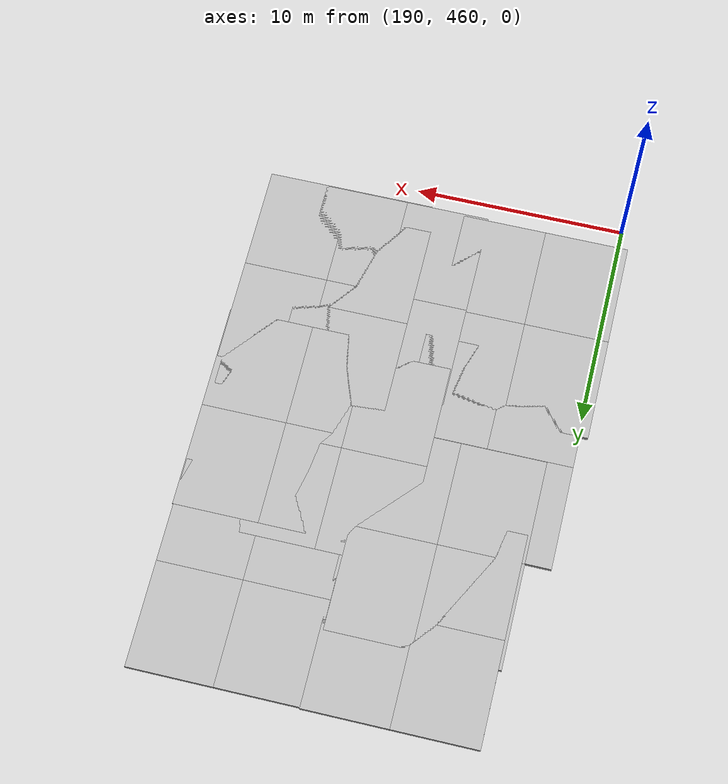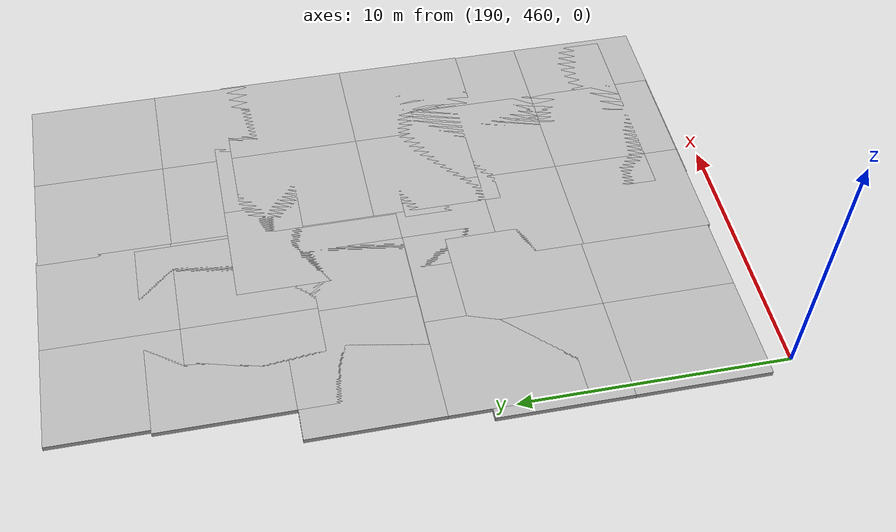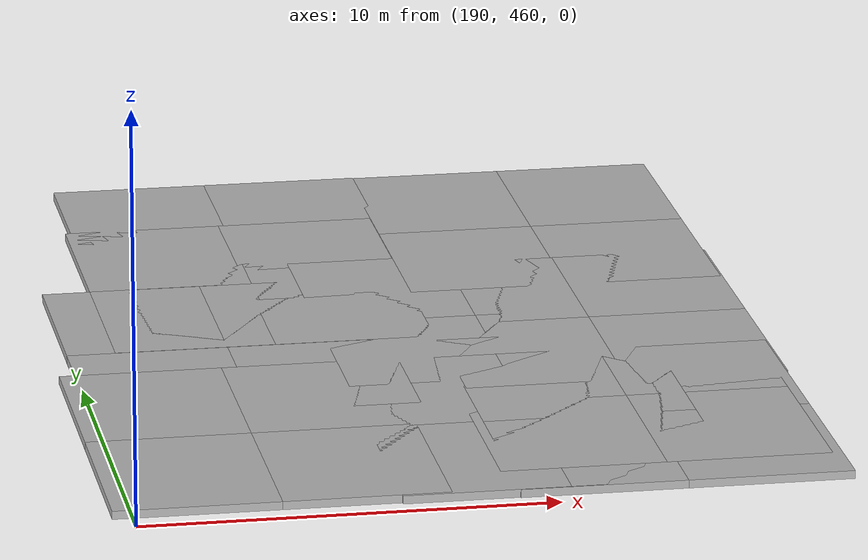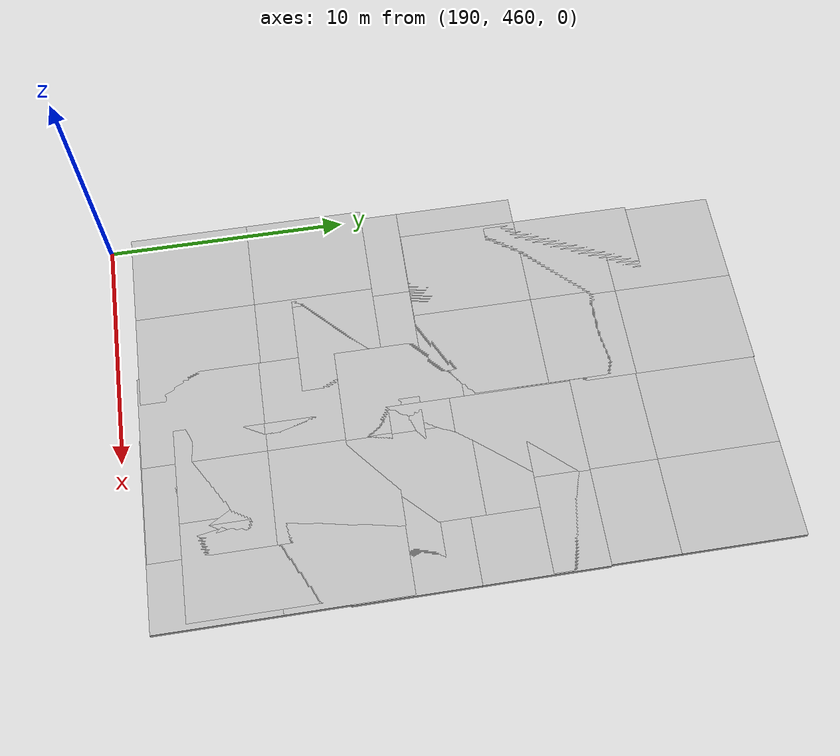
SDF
<sdf version="1.6">
 <world name="default">
  <model name="ground">
   <link name="body">
    <collision name="geom">
     <geometry><plane><normal>0 0 1</normal><size>1 1</size></plane></geometry>
     <surface><friction><ode><mu>100</mu><mu2>50</mu2></ode></friction></surface>
    </collision>
   </link>
   <static>1</static>
  </model>
  <model name="mud_box">
   <static>1</static>
   <link name="link">
    <collision name="collision"><geometry><box><size>8 10 0.2</size></box></geometry></collision>
    <visual name="visual_1">
     <pose>-2 2.5 0 0 -0 0</pose>
     <cast_shadows>0</cast_shadows>
     <geometry><box><size>4 5 0.2</size></box></geometry>
     <material>
      <script>
       <uri>model://mud_box/materials/scripts</uri>
       <uri>model://mud_box/materials/textures</uri>
       <name>vrc/mud</name>
      </script>
     </material>
    </visual>
    <visual name="visual_2">
     <pose>2 2.5 0 0 -0 0</pose>
     <cast_shadows>0</cast_shadows>
     <geometry><box><size>4 5 0.2</size></box></geometry>
     <material>
      <script>
       <uri>model://mud_box/materials/scripts</uri>
       <uri>model://mud_box/materials/textures</uri>
       <name>vrc/mud</name>
      </script>
     </material>
    </visual>
    <visual name="visual_3">
     <pose>2 -2.5 0 0 -0 0</pose>
     <cast_shadows>0</cast_shadows>
     <geometry><box><size>4 5 0.2</size></box></geometry>
     <material>
      <script>
       <uri>model://mud_box/materials/scripts</uri>
       <uri>model://mud_box/materials/textures</uri>
       <name>vrc/mud</name>
      </script>
     </material>
    </visual>
    <visual name="visual_4">
     <pose>-2 -2.5 0 0 -0 0</pose>
     <cast_shadows>0</cast_shadows>
     <geometry><box><size>4 5 0.2</size></box></geometry>
     <material>
      <script>
       <uri>model://mud_box/materials/scripts</uri>
       <uri>model://mud_box/materials/textures</uri>
       <name>vrc/mud</name>
      </script>
     </material>
    </visual>
   </link>
   <pose>203.182 473.293 0 0 -0 0</pose>
  </model>
  <model name="mud_box_0">
   <static>1</static>
   <link name="link">
    <collision name="collision"><geometry><box><size>8 10 0.2</size></box></geometry></collision>
    <visual name="visual_1">
     <pose>-2 2.5 0 0 -0 0</pose>
     <cast_shadows>0</cast_shadows>
     <geometry><box><size>4 5 0.2</size></box></geometry>
     <material>
      <script>
       <uri>model://mud_box/materials/scripts</uri>
       <uri>model://mud_box/materials/textures</uri>
       <name>vrc/mud</name>
      </script>
     </material>
    </visual>
    <visual name="visual_2">
     <pose>2 2.5 0 0 -0 0</pose>
     <cast_shadows>0</cast_shadows>
     <geometry><box><size>4 5 0.2</size></box></geometry>
     <material>
      <script>
       <uri>model://mud_box/materials/scripts</uri>
       <uri>model://mud_box/materials/textures</uri>
       <name>vrc/mud</name>
      </script>
     </material>
    </visual>
    <visual name="visual_3">
     <pose>2 -2.5 0 0 -0 0</pose>
     <cast_shadows>0</cast_shadows>
     <geometry><box><size>4 5 0.2</size></box></geometry>
     <material>
      <script>
       <uri>model://mud_box/materials/scripts</uri>
       <uri>model://mud_box/materials/textures</uri>
       <name>vrc/mud</name>
      </script>
     </material>
    </visual>
    <visual name="visual_4">
     <pose>-2 -2.5 0 0 -0 0</pose>
     <cast_shadows>0</cast_shadows>
     <geometry><box><size>4 5 0.2</size></box></geometry>
     <material>
      <script>
       <uri>model://mud_box/materials/scripts</uri>
       <uri>model://mud_box/materials/textures</uri>
       <name>vrc/mud</name>
      </script>
     </material>
    </visual>
   </link>
   <pose>202.909 467.102 0 0 -0 0</pose>
  </model>
  <model name="mud_box_2">
   <static>1</static>
   <link name="link">
    <collision name="collision"><geometry><box><size>8 10 0.2</size></box></geometry></collision>
    <visual name="visual_1">
     <pose>-2 2.5 0 0 -0 0</pose>
     <cast_shadows>0</cast_shadows>
     <geometry><box><size>4 5 0.2</size></box></geometry>
     <material>
      <script>
       <uri>model://mud_box/materials/scripts</uri>
       <uri>model://mud_box/materials/textures</uri>
       <name>vrc/mud</name>
      </script>
     </material>
    </visual>
    <visual name="visual_2">
     <pose>2 2.5 0 0 -0 0</pose>
     <cast_shadows>0</cast_shadows>
     <geometry><box><size>4 5 0.2</size></box></geometry>
     <material>
      <script>
       <uri>model://mud_box/materials/scripts</uri>
       <uri>model://mud_box/materials/textures</uri>
       <name>vrc/mud</name>
      </script>
     </material>
    </visual>
    <visual name="visual_3">
     <pose>2 -2.5 0 0 -0 0</pose>
     <cast_shadows>0</cast_shadows>
     <geometry><box><size>4 5 0.2</size></box></geometry>
     <material>
      <script>
       <uri>model://mud_box/materials/scripts</uri>
       <uri>model://mud_box/materials/textures</uri>
       <name>vrc/mud</name>
      </script>
     </material>
    </visual>
    <visual name="visual_4">
     <pose>-2 -2.5 0 0 -0 0</pose>
     <cast_shadows>0</cast_shadows>
     <geometry><box><size>4 5 0.2</size></box></geometry>
     <material>
      <script>
       <uri>model://mud_box/materials/scripts</uri>
       <uri>model://mud_box/materials/textures</uri>
       <name>vrc/mud</name>
      </script>
     </material>
    </visual>
   </link>
   <pose>193.54 465.858 0 0 -0 0</pose>
  </model>
  <model name="mud_box_3">
   <static>1</static>
   <link name="link">
    <collision name="collision"><geometry><box><size>8 10 0.2</size></box></geometry></collision>
    <visual name="visual_1">
     <pose>-2 2.5 0 0 -0 0</pose>
     <cast_shadows>0</cast_shadows>
     <geometry><box><size>4 5 0.2</size></box></geometry>
     <material>
      <script>
       <uri>model://mud_box/materials/scripts</uri>
       <uri>model://mud_box/materials/textures</uri>
       <name>vrc/mud</name>
      </script>
     </material>
    </visual>
    <visual name="visual_2">
     <pose>2 2.5 0 0 -0 0</pose>
     <cast_shadows>0</cast_shadows>
     <geometry><box><size>4 5 0.2</size></box></geometry>
     <material>
      <script>
       <uri>model://mud_box/materials/scripts</uri>
       <uri>model://mud_box/materials/textures</uri>
       <name>vrc/mud</name>
      </script>
     </material>
    </visual>
    <visual name="visual_3">
     <pose>2 -2.5 0 0 -0 0</pose>
     <cast_shadows>0</cast_shadows>
     <geometry><box><size>4 5 0.2</size></box></geometry>
     <material>
      <script>
       <uri>model://mud_box/materials/scripts</uri>
       <uri>model://mud_box/materials/textures</uri>
       <name>vrc/mud</name>
      </script>
     </material>
    </visual>
    <visual name="visual_4">
     <pose>-2 -2.5 0 0 -0 0</pose>
     <cast_shadows>0</cast_shadows>
     <geometry><box><size>4 5 0.2</size></box></geometry>
     <material>
      <script>
       <uri>model://mud_box/materials/scripts</uri>
       <uri>model://mud_box/materials/textures</uri>
       <name>vrc/mud</name>
      </script>
     </material>
    </visual>
   </link>
   <pose>193.923 472.425 0 0 -0 0</pose>
  </model>
  <model name="mud_box_4">
   <static>1</static>
   <link name="link">
    <collision name="collision"><geometry><box><size>8 10 0.2</size></box></geometry></collision>
    <visual name="visual_1">
     <pose>-2 2.5 0 0 -0 0</pose>
     <cast_shadows>0</cast_shadows>
     <geometry><box><size>4 5 0.2</size></box></geometry>
     <material>
      <script>
       <uri>model://mud_box/materials/scripts</uri>
       <uri>model://mud_box/materials/textures</uri>
       <name>vrc/mud</name>
      </script>
     </material>
    </visual>
    <visual name="visual_2">
     <pose>2 2.5 0 0 -0 0</pose>
     <cast_shadows>0</cast_shadows>
     <geometry><box><size>4 5 0.2</size></box></geometry>
     <material>
      <script>
       <uri>model://mud_box/materials/scripts</uri>
       <uri>model://mud_box/materials/textures</uri>
       <name>vrc/mud</name>
      </script>
     </material>
    </visual>
    <visual name="visual_3">
     <pose>2 -2.5 0 0 -0 0</pose>
     <cast_shadows>0</cast_shadows>
     <geometry><box><size>4 5 0.2</size></box></geometry>
     <material>
      <script>
       <uri>model://mud_box/materials/scripts</uri>
       <uri>model://mud_box/materials/textures</uri>
       <name>vrc/mud</name>
      </script>
     </material>
    </visual>
    <visual name="visual_4">
     <pose>-2 -2.5 0 0 -0 0</pose>
     <cast_shadows>0</cast_shadows>
     <geometry><box><size>4 5 0.2</size></box></geometry>
     <material>
      <script>
       <uri>model://mud_box/materials/scripts</uri>
       <uri>model://mud_box/materials/textures</uri>
       <name>vrc/mud</name>
      </script>
     </material>
    </visual>
   </link>
   <pose>200.359 465.773 0 0 -0 0</pose>
  </model>
  <model name="mud_box_5">
   <static>1</static>
   <link name="link">
    <collision name="collision"><geometry><box><size>8 10 0.2</size></box></geometry></collision>
    <visual name="visual_1">
     <pose>-2 2.5 0 0 -0 0</pose>
     <cast_shadows>0</cast_shadows>
     <geometry><box><size>4 5 0.2</size></box></geometry>
     <material>
      <script>
       <uri>model://mud_box/materials/scripts</uri>
       <uri>model://mud_box/materials/textures</uri>
       <name>vrc/mud</name>
      </script>
     </material>
    </visual>
    <visual name="visual_2">
     <pose>2 2.5 0 0 -0 0</pose>
     <cast_shadows>0</cast_shadows>
     <geometry><box><size>4 5 0.2</size></box></geometry>
     <material>
      <script>
       <uri>model://mud_box/materials/scripts</uri>
       <uri>model://mud_box/materials/textures</uri>
       <name>vrc/mud</name>
      </script>
     </material>
    </visual>
    <visual name="visual_3">
     <pose>2 -2.5 0 0 -0 0</pose>
     <cast_shadows>0</cast_shadows>
     <geometry><box><size>4 5 0.2</size></box></geometry>
     <material>
      <script>
       <uri>model://mud_box/materials/scripts</uri>
       <uri>model://mud_box/materials/textures</uri>
       <name>vrc/mud</name>
      </script>
     </material>
    </visual>
    <visual name="visual_4">
     <pose>-2 -2.5 0 0 -0 0</pose>
     <cast_shadows>0</cast_shadows>
     <geometry><box><size>4 5 0.2</size></box></geometry>
     <material>
      <script>
       <uri>model://mud_box/materials/scripts</uri>
       <uri>model://mud_box/materials/textures</uri>
       <name>vrc/mud</name>
      </script>
     </material>
    </visual>
   </link>
   <pose>195.129 477.441 0 0 -0 0</pose>
  </model>
  <model name="mud_box_6">
   <static>1</static>
   <link name="link">
    <collision name="collision"><geometry><box><size>8 10 0.2</size></box></geometry></collision>
    <visual name="visual_1">
     <pose>-2 2.5 0 0 -0 0</pose>
     <cast_shadows>0</cast_shadows>
     <geometry><box><size>4 5 0.2</size></box></geometry>
     <material>
      <script>
       <uri>model://mud_box/materials/scripts</uri>
       <uri>model://mud_box/materials/textures</uri>
       <name>vrc/mud</name>
      </script>
     </material>
    </visual>
    <visual name="visual_2">
     <pose>2 2.5 0 0 -0 0</pose>
     <cast_shadows>0</cast_shadows>
     <geometry><box><size>4 5 0.2</size></box></geometry>
     <material>
      <script>
       <uri>model://mud_box/materials/scripts</uri>
       <uri>model://mud_box/materials/textures</uri>
       <name>vrc/mud</name>
      </script>
     </material>
    </visual>
    <visual name="visual_3">
     <pose>2 -2.5 0 0 -0 0</pose>
     <cast_shadows>0</cast_shadows>
     <geometry><box><size>4 5 0.2</size></box></geometry>
     <material>
      <script>
       <uri>model://mud_box/materials/scripts</uri>
       <uri>model://mud_box/materials/textures</uri>
       <name>vrc/mud</name>
      </script>
     </material>
    </visual>
    <visual name="visual_4">
     <pose>-2 -2.5 0 0 -0 0</pose>
     <cast_shadows>0</cast_shadows>
     <geometry><box><size>4 5 0.2</size></box></geometry>
     <material>
      <script>
       <uri>model://mud_box/materials/scripts</uri>
       <uri>model://mud_box/materials/textures</uri>
       <name>vrc/mud</name>
      </script>
     </material>
    </visual>
   </link>
   <pose>200.407 473.909 0 0 -0 0</pose>
  </model>
  <model name="mud_box_7">
   <static>1</static>
   <link name="link">
    <collision name="collision"><geometry><box><size>8 10 0.2</size></box></geometry></collision>
    <visual name="visual_1">
     <pose>-2 2.5 0 0 -0 0</pose>
     <cast_shadows>0</cast_shadows>
     <geometry><box><size>4 5 0.2</size></box></geometry>
     <material>
      <script>
       <uri>model://mud_box/materials/scripts</uri>
       <uri>model://mud_box/materials/textures</uri>
       <name>vrc/mud</name>
      </script>
     </material>
    </visual>
    <visual name="visual_2">
     <pose>2 2.5 0 0 -0 0</pose>
     <cast_shadows>0</cast_shadows>
     <geometry><box><size>4 5 0.2</size></box></geometry>
     <material>
      <script>
       <uri>model://mud_box/materials/scripts</uri>
       <uri>model://mud_box/materials/textures</uri>
       <name>vrc/mud</name>
      </script>
     </material>
    </visual>
    <visual name="visual_3">
     <pose>2 -2.5 0 0 -0 0</pose>
     <cast_shadows>0</cast_shadows>
     <geometry><box><size>4 5 0.2</size></box></geometry>
     <material>
      <script>
       <uri>model://mud_box/materials/scripts</uri>
       <uri>model://mud_box/materials/textures</uri>
       <name>vrc/mud</name>
      </script>
     </material>
    </visual>
    <visual name="visual_4">
     <pose>-2 -2.5 0 0 -0 0</pose>
     <cast_shadows>0</cast_shadows>
     <geometry><box><size>4 5 0.2</size></box></geometry>
     <material>
      <script>
       <uri>model://mud_box/materials/scripts</uri>
       <uri>model://mud_box/materials/textures</uri>
       <name>vrc/mud</name>
      </script>
     </material>
    </visual>
   </link>
   <pose>195.267 481.085 0 0 -0 0</pose>
  </model>
  <model name="mud_box_8">
   <static>1</static>
   <link name="link">
    <collision name="collision"><geometry><box><size>8 10 0.2</size></box></geometry></collision>
    <visual name="visual_1">
     <pose>-2 2.5 0 0 -0 0</pose>
     <cast_shadows>0</cast_shadows>
     <geometry><box><size>4 5 0.2</size></box></geometry>
     <material>
      <script>
       <uri>model://mud_box/materials/scripts</uri>
       <uri>model://mud_box/materials/textures</uri>
       <name>vrc/mud</name>
      </script>
     </material>
    </visual>
    <visual name="visual_2">
     <pose>2 2.5 0 0 -0 0</pose>
     <cast_shadows>0</cast_shadows>
     <geometry><box><size>4 5 0.2</size></box></geometry>
     <material>
      <script>
       <uri>model://mud_box/materials/scripts</uri>
       <uri>model://mud_box/materials/textures</uri>
       <name>vrc/mud</name>
      </script>
     </material>
    </visual>
    <visual name="visual_3">
     <pose>2 -2.5 0 0 -0 0</pose>
     <cast_shadows>0</cast_shadows>
     <geometry><box><size>4 5 0.2</size></box></geometry>
     <material>
      <script>
       <uri>model://mud_box/materials/scripts</uri>
       <uri>model://mud_box/materials/textures</uri>
       <name>vrc/mud</name>
      </script>
     </material>
    </visual>
    <visual name="visual_4">
     <pose>-2 -2.5 0 0 -0 0</pose>
     <cast_shadows>0</cast_shadows>
     <geometry><box><size>4 5 0.2</size></box></geometry>
     <material>
      <script>
       <uri>model://mud_box/materials/scripts</uri>
       <uri>model://mud_box/materials/textures</uri>
       <name>vrc/mud</name>
      </script>
     </material>
    </visual>
   </link>
   <pose>203.14 481.042 0 0 -0 0</pose>
  </model>
  <model name="mud_box_9">
   <static>1</static>
   <link name="link">
    <collision name="collision"><geometry><box><size>8 10 0.2</size></box></geometry></collision>
    <visual name="visual_1">
     <pose>-2 2.5 0 0 -0 0</pose>
     <cast_shadows>0</cast_shadows>
     <geometry><box><size>4 5 0.2</size></box></geometry>
     <material>
      <script>
       <uri>model://mud_box/materials/scripts</uri>
       <uri>model://mud_box/materials/textures</uri>
       <name>vrc/mud</name>
      </script>
     </material>
    </visual>
    <visual name="visual_2">
     <pose>2 2.5 0 0 -0 0</pose>
     <cast_shadows>0</cast_shadows>
     <geometry><box><size>4 5 0.2</size></box></geometry>
     <material>
      <script>
       <uri>model://mud_box/materials/scripts</uri>
       <uri>model://mud_box/materials/textures</uri>
       <name>vrc/mud</name>
      </script>
     </material>
    </visual>
    <visual name="visual_3">
     <pose>2 -2.5 0 0 -0 0</pose>
     <cast_shadows>0</cast_shadows>
     <geometry><box><size>4 5 0.2</size></box></geometry>
     <material>
      <script>
       <uri>model://mud_box/materials/scripts</uri>
       <uri>model://mud_box/materials/textures</uri>
       <name>vrc/mud</name>
      </script>
     </material>
    </visual>
    <visual name="visual_4">
     <pose>-2 -2.5 0 0 -0 0</pose>
     <cast_shadows>0</cast_shadows>
     <geometry><box><size>4 5 0.2</size></box></geometry>
     <material>
      <script>
       <uri>model://mud_box/materials/scripts</uri>
       <uri>model://mud_box/materials/textures</uri>
       <name>vrc/mud</name>
      </script>
     </material>
    </visual>
   </link>
   <pose>203.146 465.743 0 0 -0 0</pose>
  </model>
 </world>
</sdf>
